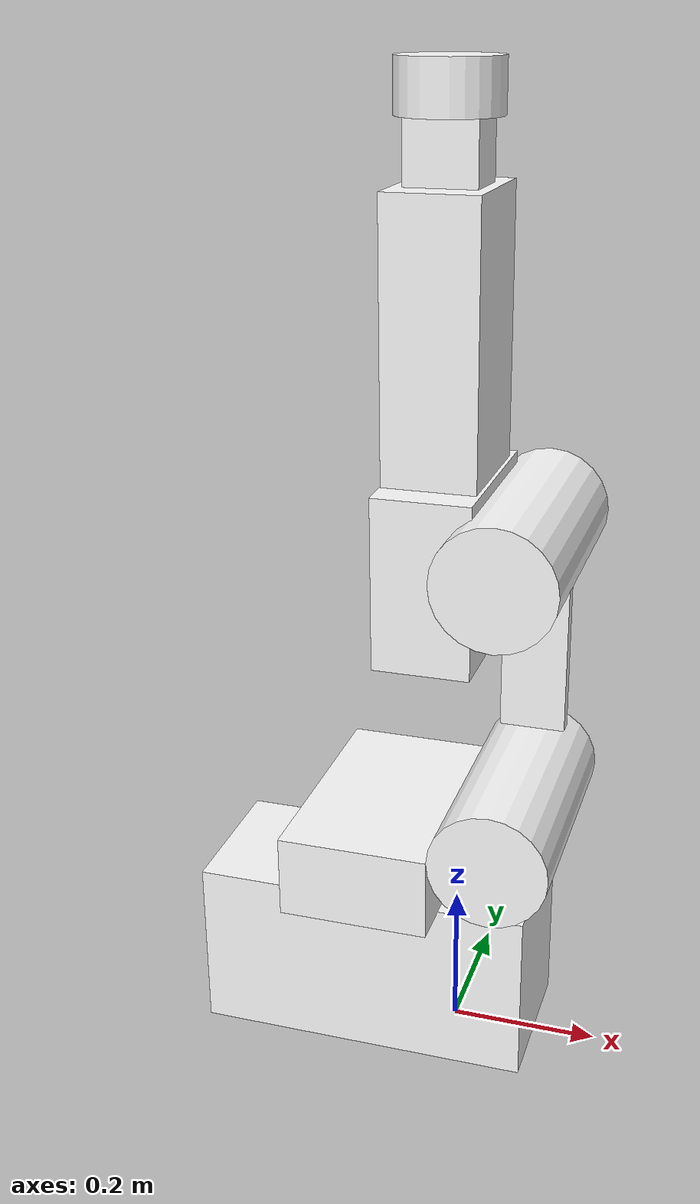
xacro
<?xml version="1.0"?>
<robot xmlns:xacro="http://www.ros.org/wiki/xacro">
  <property name="PI" value="3.1415926535897931" />
  <property name="offset_from_limit" value="5.0" />

  <!-- base_link -->
  <link name="base_link" >
    <visual>
      <geometry>
	<box size="0.455 .204 .239"/>
      </geometry>
      <origin xyz="-0.1125 0 .1185"/>
      <material name="orange">
        <color rgba="1 1 1 1"/>
      </material>
    </visual>
    <collision>
      <geometry>
	<box size="0.455 .204 .239"/>
      </geometry>
      <origin xyz="-0.1125 0 .1185"/>
    </collision>
    <inertial>
      <origin xyz="0 0 1" rpy="0 0 0"/>
      <mass value="0.01"/>
      <inertia
        ixx="1.0" ixy="0.0" ixz="0.0"
        iyy="1.0" iyz="0.0"
        izz="1.0"/>
    </inertial>
  </link>

  <joint name="j1" type="revolute">
    <axis xyz="0 0 1"/>
    <limit effort="1000.0" lower="${(-170+offset_from_limit)*PI/180}" upper="${(170-offset_from_limit)*PI/180}" velocity="0.2"/>
    <parent link="base_link"/>
    <child link="shoulder_block"/>
    <origin xyz="0 0 0.239"/>
   <dynamics damping="100.0" friction="100.0" />
  </joint>

  <!-- shoulder_block -->
  <link name="shoulder_block">
    <visual>
      <geometry>
	<box size="0.200 .327 .111"/>
      </geometry>
      <origin xyz="-.100 0 0.0555"/>
      <material name="orange">
        <color rgba="1 1 1 1"/>
      </material>
    </visual>
    <collision>
      <geometry>
	<box size="0.200 .327 .111"/>
      </geometry>
      <origin xyz="-.100 0 0.0555"/>
    </collision>
    <inertial>
      <origin xyz="0 0 1" rpy="0 0 0"/>
      <mass value="0.01"/>
      <inertia
        ixx="1.0" ixy="0.0" ixz="0.0"
        iyy="1.0" iyz="0.0"
        izz="1.0"/>
    </inertial>
  </link>

  <joint name="j2" type="revolute">
    <axis xyz="0 0 1"/>
    <limit effort="1000.0" lower="${-92*PI/180}" upper="${(135-offset_from_limit)*PI/180}" velocity="0.2"/>
    <parent link="shoulder_block"/>
    <child link="shoulder"/>
    <origin xyz="0.079 0 0.111" rpy="1.57079632679 0 3.14159265359"/>
   <dynamics damping="100.0" friction="100.0" />
  </joint>

  <!-- shoulder -->
  <link name="shoulder">
    <visual>
      <geometry>
	<cylinder length="0.327" radius="0.079"/>
      </geometry>
      <origin xyz="0 0 0"/>
      <material name="orange">
        <color rgba="1 1 1 1"/>
      </material>
    </visual>
    <collision>
      <geometry>
        <cylinder length="0.327" radius="0.079"/>
      </geometry>
      <origin xyz="0 0 0"/>
    </collision>
    <inertial>
      <origin xyz="0 0 1" rpy="0 0 0"/>
      <mass value="0.01"/>
      <inertia
        ixx="1.0" ixy="0.0" ixz="0.0"
        iyy="1.0" iyz="0.0"
        izz="1.0"/>
    </inertial>
  </link>

  <joint name="fixed_joint_1" type="fixed">
    <axis xyz="0 0 1"/>
    <parent link="shoulder"/>
    <child link="upper_arm"/>
    <origin xyz="0 0.079 0"/>
   <dynamics damping="100.0" friction="100.0" />
  </joint>

  <!-- upper_arm -->
  <link name="upper_arm">
    <visual>
      <geometry>
	<box size="0.090 0.222 0.02"/>
      </geometry>
      <origin xyz="0 0.111 0.102"/>
      <material name="orange">
        <color rgba="1 1 1 1"/>
      </material>
    </visual>
    <collision>
      <geometry>
	<box size="0.090 0.222 0.02"/>
      </geometry>
      <origin xyz="0 0.111 0.102"/>
    </collision>
    <inertial>
      <origin xyz="0 0 1" rpy="0 0 0"/>
      <mass value="0.01"/>
      <inertia
        ixx="1.0" ixy="0.0" ixz="0.0"
        iyy="1.0" iyz="0.0"
        izz="1.0"/>
    </inertial>
  </link>

  <joint name="j3" type="revolute">
    <axis xyz="0 0 1"/>
    <limit effort="1000.0" lower="${(-129+offset_from_limit)*PI/180}" upper="${(166-offset_from_limit)*PI/180}" velocity="0.2"/>
    <parent link="upper_arm"/>
    <child link="elbow"/>
    <origin xyz="0 0.301 0" rpy="0 0 1.57"/>
   <dynamics damping="100.0" friction="100.0" />
  </joint>

  <!-- elbow -->
  <link name="elbow">
    <visual>
      <geometry>
	<cylinder length="0.327" radius="0.079"/>
      </geometry>
      <origin xyz="0 0 0"/>
      <material name="orange">
        <color rgba="1 1 1 1"/>
      </material>
    </visual>
    <collision>
      <geometry>
        <cylinder length="0.327" radius="0.079"/>
      </geometry>
      <origin xyz="0 0 0"/>
    </collision>
    <inertial>
      <origin xyz="0 0 1" rpy="0 0 0"/>
      <mass value="0.01"/>
      <inertia
        ixx="1.0" ixy="0.0" ixz="0.0"
        iyy="1.0" iyz="0.0"
        izz="1.0"/>
    </inertial>
  </link>

  <joint name="fixed_joint_2" type="fixed">
    <parent link="elbow"/>
    <child link="elbow_block"/>
    <origin xyz="0 -0.100 0"/>
   <dynamics damping="100.0" friction="100.0" />
  </joint>

  <!-- elbow_block -->
  <link name="elbow_block">
    <visual>
      <geometry>
	<box size="0.225 .126 .239"/>
      </geometry>
      <origin xyz="-0.0275 0 0"/>
      <material name="orange">
        <color rgba="1 1 1 1"/>
      </material>
    </visual>
    <collision>
      <geometry>
	<box size="0.225 .126 .239"/>
      </geometry>
      <origin xyz="-0.0275 0 0"/>
    </collision>
    <inertial>
      <origin xyz="0 0 1" rpy="0 0 0"/>
      <mass value="0.01"/>
      <inertia
        ixx="1.0" ixy="0.0" ixz="0.0"
        iyy="1.0" iyz="0.0"
        izz="1.0"/>
    </inertial>
  </link>

  <joint name="j4" type="revolute">
    <axis xyz="0 0 1"/>
    <limit effort="1000.0" lower="${(-160+offset_from_limit)*PI/180}" upper="${(160-offset_from_limit)*PI/180}" velocity="0.2"/>
    <parent link="elbow_block"/>
    <child link="fore_arm"/>
    <origin xyz="0.079 0 0"  rpy="0 1.5707963267 0"/>
   <dynamics damping="100.0" friction="100.0" />
  </joint>

  <!-- fore_arm -->
  <link name="fore_arm">
    <visual>
      <geometry>
	<box size="0.170 .120 .346"/>
      </geometry>
      <origin xyz="0 0 0.1815"/>
      <material name="orange">
        <color rgba="1 1 1 1"/>
      </material>
    </visual>
    <collision>
      <geometry>
	<box size="0.170 .120 .346"/>
      </geometry>
      <origin xyz="0 0 0.1815"/>
    </collision>
    <inertial>
      <origin xyz="0 0 1" rpy="0 0 0"/>
      <mass value="0.01"/>
      <inertia
        ixx="1.0" ixy="0.0" ixz="0.0"
        iyy="1.0" iyz="0.0"
        izz="1.0"/>
    </inertial>
  </link>

  <joint name="j5" type="revolute">
    <axis xyz="0 0 1"/>
    <limit effort="1000.0" lower="${(-110+offset_from_limit)*PI/180}" upper="${(110-offset_from_limit)*PI/180}" velocity="0.2"/>
    <parent link="fore_arm"/>
    <child link="wrist"/>
    <origin xyz="0 0 0.346"  rpy="0.0 -1.5707963267 0"/>
   <dynamics damping="100.0" friction="100.0" />
  </joint>

  <!-- wrist -->
  <link name="wrist">
    <visual>
     <geometry>
	<box size="0.170 .09 .080"/>
      </geometry>
      <origin xyz="0 0 0"/>
      <material name="orange">
        <color rgba="1 1 1 1"/>
      </material>
    </visual>
    <collision>
     <geometry>
	<box size="0.170 .09 .080"/>
      </geometry>
      <origin xyz="0 0 0"/>
    </collision>
    <inertial>
      <origin xyz="0 0 1" rpy="0 0 0"/>
      <mass value="0.01"/>
      <inertia
        ixx="1.0" ixy="0.0" ixz="0.0"
        iyy="1.0" iyz="0.0"
        izz="1.0"/>
    </inertial>
  </link>

  <joint name="j6" type="revolute">
    <axis xyz="0 0 1"/>
    <limit effort="1000.0" lower="${(-180+offset_from_limit)*PI/180}" upper="${(180-offset_from_limit)*PI/180}" velocity="0.2"/><!-- instead of -180 is -360 , 180 is 360 -->
    <parent link="wrist"/>
    <child link="torque_sensor"/>
    <origin xyz="0.085 0 0"  rpy="0 1.5707963267 0"/>
   <dynamics damping="10.0" friction="100.0" />
  </joint>

  <!-- torque_sensor -->
  <link name="torque_sensor">
    <visual>
     <geometry>
	<cylinder  length="0.065" radius="0.065"/>
      </geometry>
      <origin xyz="0 0 0.0325"/>
      <material name="orange">
        <color rgba="1 1 1 1"/>
      </material>
    </visual>
    <collision>
     <geometry>
	<cylinder  length="0.065" radius="0.065"/>
      </geometry>
      <origin xyz="0 0 0.0325"/>
      <material name="orange">
        <color rgba="1 1 1 1"/>
      </material>
    </collision>
    <inertial>
      <origin xyz="0 0 1" rpy="0 0 0"/>
      <mass value="0.01"/>
      <inertia
        ixx="1.0" ixy="0.0" ixz="0.0"
        iyy="1.0" iyz="0.0"
        izz="1.0"/>
    </inertial>
  </link>

  <joint name="torque_sensor_joint" type="fixed">
    <axis xyz="0 0 1"/>
    <limit effort="1000.0" lower="${(-360+offset_from_limit)*PI/180}" upper="${(360-offset_from_limit)*PI/180}" velocity="0.2"/>
    <parent link="torque_sensor"/>
    <child link="end_effector"/>
    <origin xyz="0 0 0.065"  rpy="0 0 0"/> <!-- original is 0.085 but we have the torque sensor...-->
   <dynamics damping="100.0" friction="100.0" />
  </joint>

  <!-- end_effector -->
  <link name="end_effector">
    <inertial>
      <origin xyz="0 0 1" rpy="0 0 0"/>
      <mass value="0.01"/>
      <inertia
        ixx="1.0" ixy="0.0" ixz="0.0"
        iyy="1.0" iyz="0.0"
        izz="1.0"/>
    </inertial>
  </link>

  <transmission name="tran1">
    <type>transmission_interface/SimpleTransmission</type>
    <joint name="j1">
      <hardwareInterface>PositionJointInterface</hardwareInterface>
    </joint>
    <actuator name="motor1">
      <hardwareInterface>EffortJointInterface</hardwareInterface>
      <mechanicalReduction>1</mechanicalReduction>
    </actuator>
  </transmission>

  <transmission name="tran2">
    <type>transmission_interface/SimpleTransmission</type>
    <joint name="j2">
      <hardwareInterface>PositionJointInterface</hardwareInterface>
    </joint>
    <actuator name="motor2">
      <hardwareInterface>EffortJointInterface</hardwareInterface>
      <mechanicalReduction>1</mechanicalReduction>
    </actuator>
  </transmission>

  <transmission name="tran3">
    <type>transmission_interface/SimpleTransmission</type>
    <joint name="j3">
      <hardwareInterface>PositionJointInterface</hardwareInterface>
    </joint>
    <actuator name="motor3">
      <hardwareInterface>EffortJointInterface</hardwareInterface>
      <mechanicalReduction>1</mechanicalReduction>
    </actuator>
  </transmission>

  <transmission name="tran4">
    <type>transmission_interface/SimpleTransmission</type>
    <joint name="j4">
      <hardwareInterface>PositionJointInterface</hardwareInterface>
    </joint>
    <actuator name="motor4">
      <hardwareInterface>EffortJointInterface</hardwareInterface>
      <mechanicalReduction>1</mechanicalReduction>
    </actuator>
  </transmission>

  <transmission name="tran5">
    <type>transmission_interface/SimpleTransmission</type>
    <joint name="j5">
      <hardwareInterface>PositionJointInterface</hardwareInterface>
    </joint>
    <actuator name="motor5">
      <hardwareInterface>EffortJointInterface</hardwareInterface>
      <mechanicalReduction>1</mechanicalReduction>
    </actuator>
  </transmission>

  <transmission name="tran6">
    <type>transmission_interface/SimpleTransmission</type>
    <joint name="j6">
      <hardwareInterface>PositionJointInterface</hardwareInterface>
    </joint>
    <actuator name="motor6">
      <hardwareInterface>EffortJointInterface</hardwareInterface>
      <mechanicalReduction>1</mechanicalReduction>
    </actuator>
  </transmission>

</robot>
